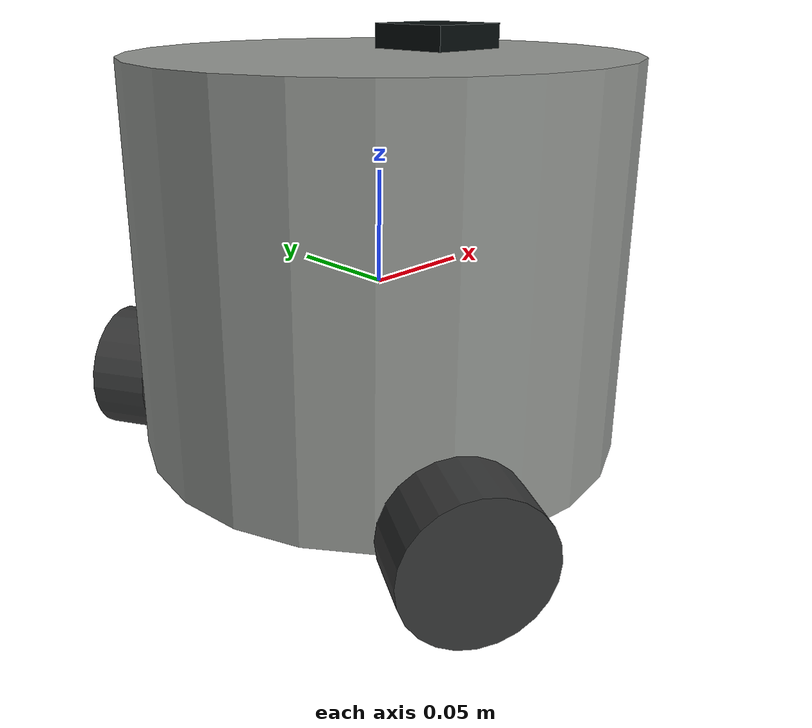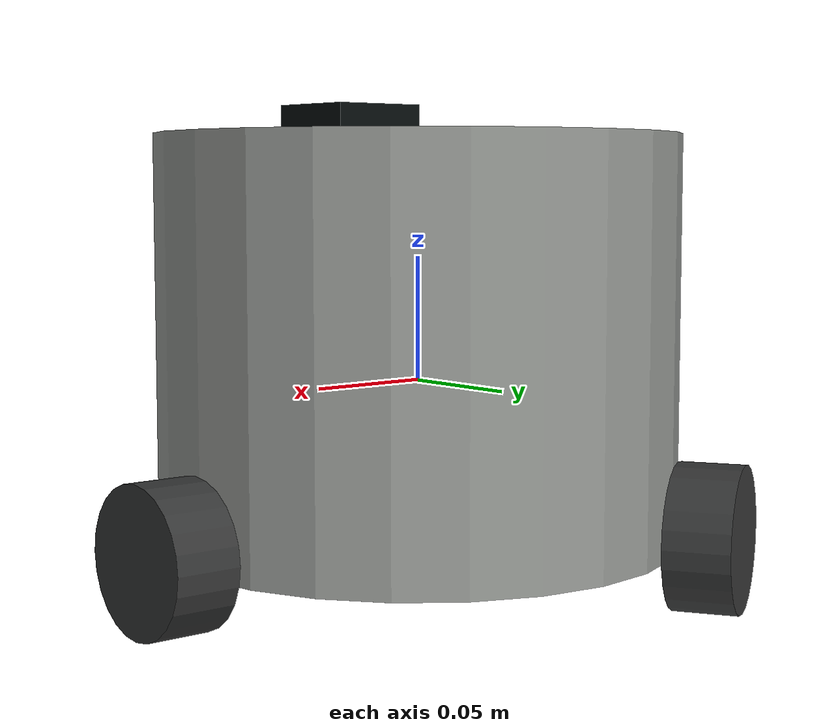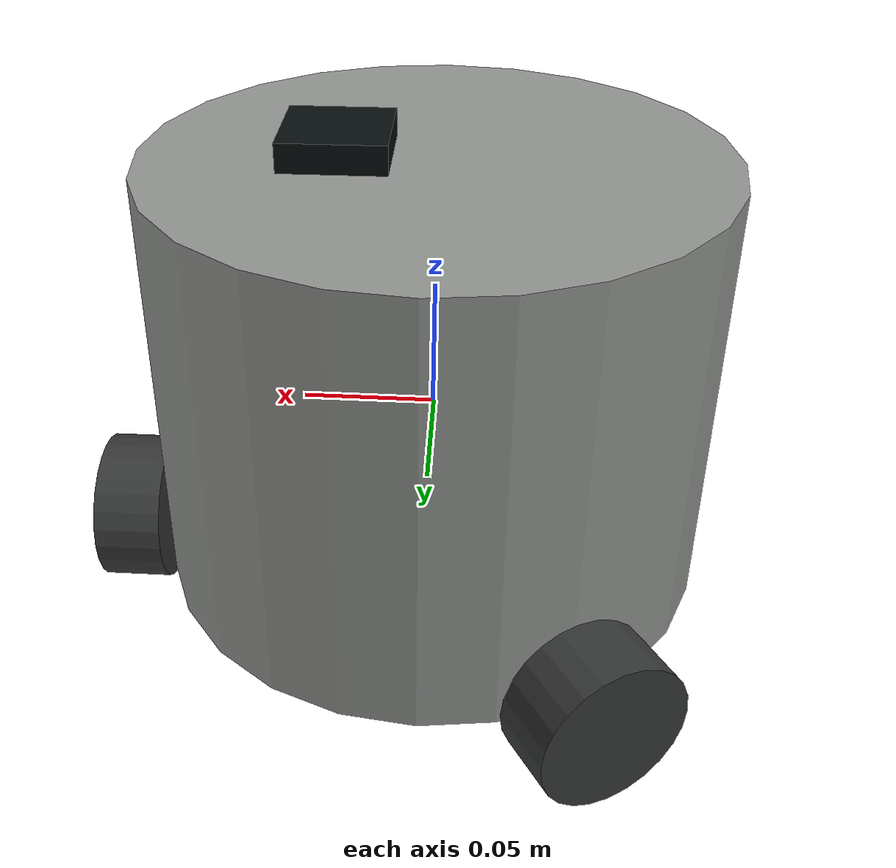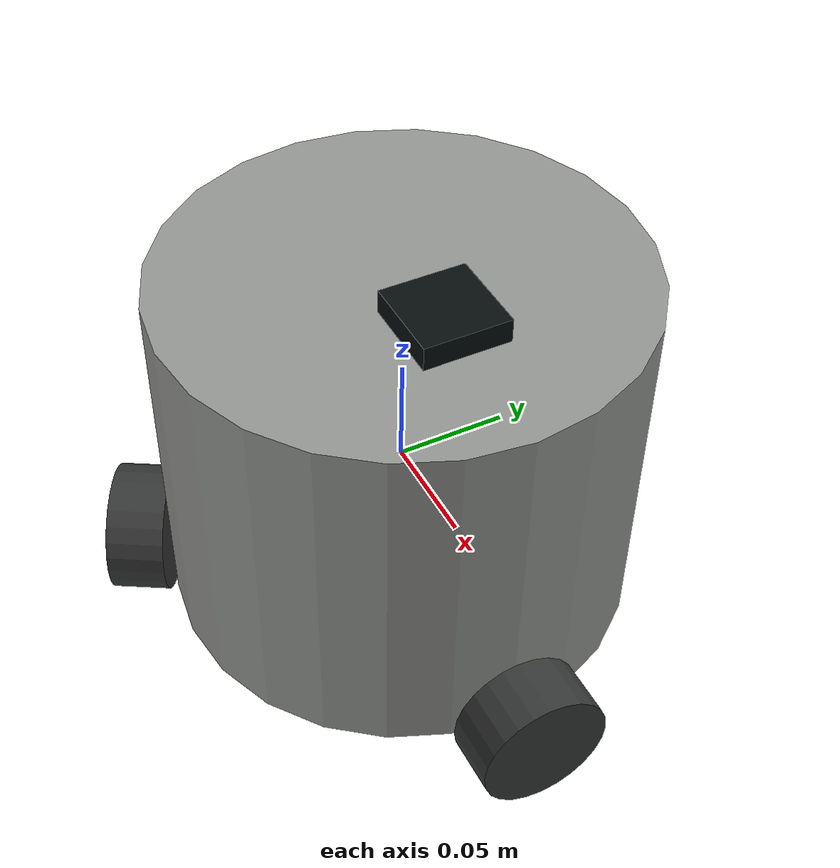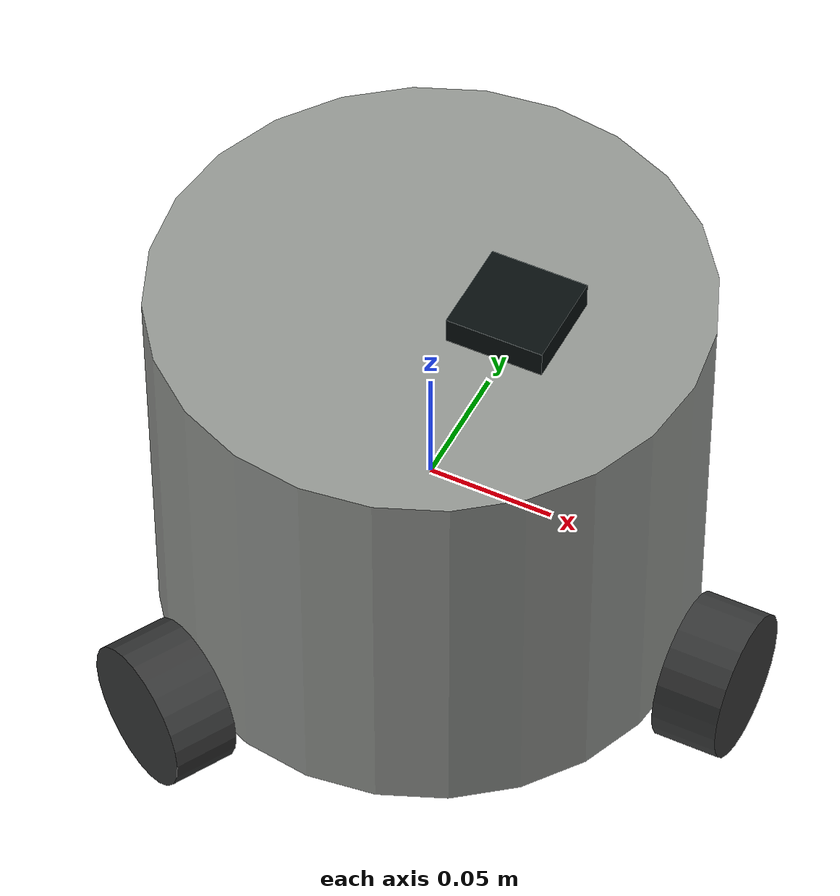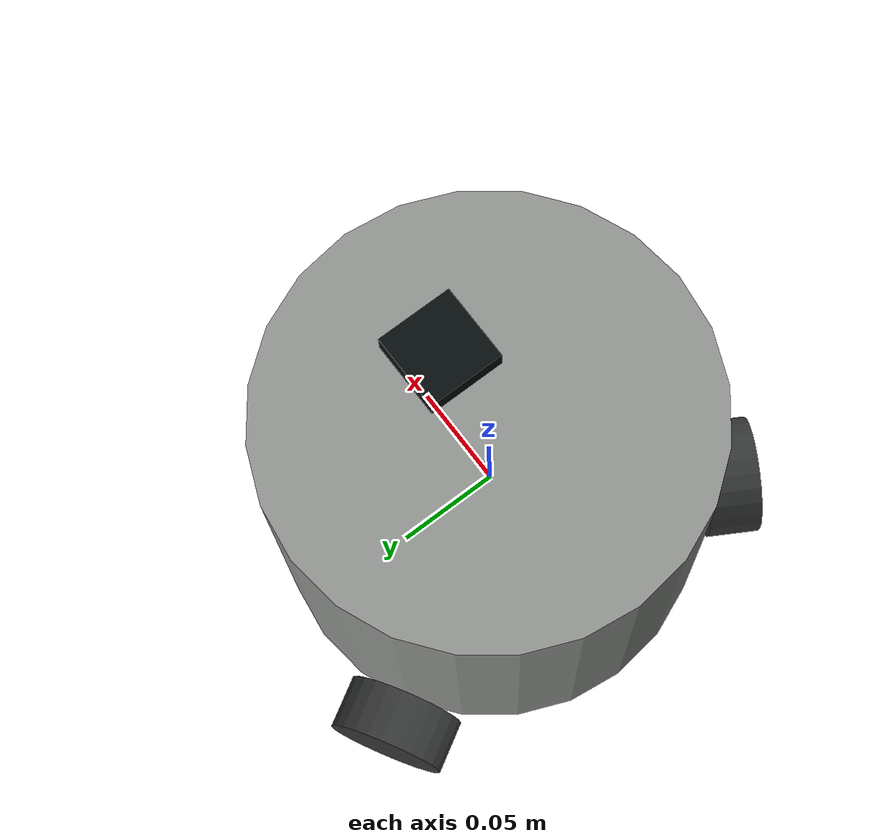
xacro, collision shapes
<?xml version="1.0" encoding="utf-8"?>
<robot name="akros2_omni" xmlns:xacro="http://ros.org/wiki/xacro">
<xacro:include filename="$(find akros2_description)/urdf/akros2_omni/robot.common.xacro"/>
<xacro:include filename="$(find akros2_description)/urdf/akros2_omni/robot.control.xacro"/>
<xacro:include filename="$(find akros2_description)/urdf/akros2_omni/robot.gazebo.xacro"/>

<xacro:arg name="mesh_path_omni" default="package://akros2_description/meshes/akros2_omni/" /> <!-- HTTPS URL also works here -->
<xacro:arg name="nopath" default="false" />
<xacro:property name="mesh_path" value="$(arg mesh_path_omni)" />

<xacro:if value="$(arg nopath)">
  <xacro:property name="mesh_path" value="" />
</xacro:if>

<!-- **** LINKS **** -->

<!-- BASE_LINK -->
<link name="base_link">
  <visual>
    <origin xyz="0 0 0" rpy="0 0 0" />
    <geometry>
      <mesh filename="${mesh_path}base_module.stl" />
    </geometry>
    <material name="BaseLinkColor"/>
  </visual>
  <collision>
    <origin xyz="0 0 ${base_center_offset_z}" rpy="0 0 0" />
    <geometry>
      <cylinder length="${base_height}" radius="${base_radius}"/>
    </geometry>
  </collision>
</link>

<!-- BASE_LINK_INERTIAL (WORKAROUND FOR KDL WHICH DOES NOT ACCEPT BASE_LINK WITH INERTIA) -->
<link name="base_link_inertial">
  <inertial>
    <origin xyz="0 0 0" rpy="0 0 0" />
    <mass value="${base_mass}"/>
    <xacro:cylinder_inertia m="${base_mass}" r="${base_radius}" h="${base_height}"/>
  </inertial>
</link>

<!-- BASE_FOOTPRINT -->
<link name="base_footprint"/>

<!-- LD06 LASER_LINK -->
<link name="laser_link">
  <inertial>
    <origin xyz="0 0 0" rpy="0 0 0" />
    <mass value="${laser_mass}" />
    <xacro:box_inertia m="${laser_mass}" x="${laser_length}" y="${laser_width}" z="${laser_height}"/>
  </inertial>
  <visual>
    <origin xyz="0 0 0" rpy="0 0 ${-1*pi_by_two}" />
    <geometry>
      <mesh filename="${mesh_path}ld06.stl" />
    </geometry>
    <material name="LaserColor"/>
  </visual>
  <collision>
    <origin xyz="0 0 ${laser_height/2}" rpy="0 0 ${-1*pi_by_two}" />
    <geometry>
      <box size="${laser_length} ${laser_width} ${laser_height}"/>
    </geometry>
  </collision>
</link>

<!-- LASER_FRAME -->
<link name="laser_frame"/>

<!-- BNO085 IMU_LINK -->
<link name="imu_link"/>

<!-- WHEEL FRONT -->
<link name="wheel_f">
  <inertial>
    <mass value="${wheel_mass}"/>
    <xacro:cylinder_inertia m="${wheel_mass}" r="${wheel_radius}" h="${wheel_thickness}"/>
  </inertial>
  <visual>
    <origin xyz="0 0 0" rpy="0 0 0" />
    <geometry>
      <mesh filename="${mesh_path}omniwheel.stl" />
    </geometry>
    <material name="WheelsNavColor"/>
  </visual>
  <collision>
    <origin xyz="${wheel_thickness/2} 0 0" rpy="0 ${pi_by_two} 0" />
    <geometry>
      <cylinder length="${wheel_thickness}" radius="${wheel_radius}"/>
    </geometry>
  </collision>
</link>

<!-- WHEEL LEFT -->
<link name="wheel_l">
  <inertial>
    <mass value="${wheel_mass}"/>
    <xacro:cylinder_inertia m="${wheel_mass}" r="${wheel_radius}" h="${wheel_thickness}"/>
  </inertial>
  <visual>
    <origin xyz="0 0 0" rpy="0 0 0" />
    <geometry>
      <mesh filename="${mesh_path}omniwheel.stl" />
    </geometry>
    <material name="WheelsNavColor"/>
  </visual>
  <collision>
    <origin xyz="${wheel_thickness/2} 0 0" rpy="0 ${pi_by_two} 0" />
    <geometry>
      <cylinder length="${wheel_thickness}" radius="${wheel_radius}"/>
    </geometry>
  </collision>
</link>

<!-- WHEEL RIGHT -->
<link name="wheel_r">
  <inertial>
    <mass value="${wheel_mass}"/>
    <xacro:cylinder_inertia m="${wheel_mass}" r="${wheel_radius}" h="${wheel_thickness}"/>
  </inertial>
  <visual>
    <origin xyz="0 0 0" rpy="0 0 0" />
    <geometry>
      <mesh filename="${mesh_path}omniwheel.stl" />
    </geometry>
    <material name="WheelsNavColor"/>
  </visual>
  <collision>
    <origin xyz="${wheel_thickness/2} 0 0" rpy="0 ${pi_by_two} 0" />
    <geometry>
      <cylinder length="${wheel_thickness}" radius="${wheel_radius}"/>
    </geometry>
  </collision>
</link>

<!-- **** JOINTS **** -->

<!-- BASE_LINK_INERTIAL TO BASE_LINK -->
<joint name="base_inertial_fixed" type="fixed">
  <parent link="base_link"/>
  <child link="base_link_inertial"/>
  <origin xyz="0 0 0"/>
</joint>

<!-- BASE_FOOTPRINT TO BASE_LINK -->
<joint name="base_footprint_fixed" type="fixed">
  <parent link="base_link"/>
  <child link="base_footprint"/>
  <origin xyz="0 0 ${footprint_base_offset_z}"/>
</joint>

<!-- LASER_LINK TO BASE_LINK -->
<joint name="base_laser_fixed" type="fixed">
  <parent link="base_link"/>
  <child link="laser_link"/>
  <origin xyz="${base_laser_offset_x} 0 ${base_laser_offset_z}"/>
</joint>

<!-- LASER_FRAME TO LASER_LINK -->
<joint name="laser_frame_fixed" type="fixed">
  <parent link="laser_link"/>
  <child link="laser_frame"/>
  <origin xyz="0 0 ${laser_frame_offset_z}"/>
</joint>

<!-- IMU_LINK TO BASE_LINK -->
<joint name="imu_base_fixed" type="fixed">
  <parent link="base_link"/>
  <child link="imu_link"/>
  <origin xyz="0 0 ${imu_offset_z}"/>
</joint>

<!-- WHEEL_F TO BASE_LINK -->
<joint name="joint_f" type="continuous">
  <parent link="base_link" />
  <child link="wheel_f" />
  <origin xyz="${joint_f_offset_x} 0 ${joint_offset_z}" rpy="0 0 0" />
  <axis xyz="1 0 0" />
</joint>

<!-- WHEEL_L TO BASE_LINK -->
<joint name="joint_l" type="continuous">
  <parent link="base_link" />
  <child link="wheel_l" />
  <origin xyz="${joint_lr_offset_x} ${joint_lr_offset_y} ${joint_offset_z}" rpy="0 0 ${2*pi_by_three}" />
  <axis xyz="1 0 0" />
</joint>

<!-- WHEEL_R TO BASE_LINK -->
<joint name="joint_r" type="continuous">
  <parent link="base_link" />
  <child link="wheel_r" />
  <origin xyz="${joint_lr_offset_x} ${-1*joint_lr_offset_y} ${joint_offset_z}" rpy="0 0 ${-2*pi_by_three}" />
  <axis xyz="1 0 0" />
</joint>

</robot>

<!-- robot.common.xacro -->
<robot name="omni_common" xmlns:xacro="http://ros.org/wiki/xacro">
<!-- All values below are based on the CAD model (Fusion 360) -->

<xacro:property name="pi_by_two" value="1.5707963" />
<xacro:property name="pi_by_three" value="1.0471975"/>

<xacro:property name="base_mass" value="2.0" /> <!-- Guesstimate, needs to be measured -->
<xacro:property name="base_height" value="0.1651" />
<xacro:property name="base_radius" value="0.105" /> <!-- Distance from the motor shaft to the vertical axis -->

<xacro:property name="imu_offset_z" value="0.063003" />

<xacro:property name="laser_mass" value="0.12" />
<xacro:property name="laser_length" value="0.038" />
<xacro:property name="laser_width" value="0.0381" />
<xacro:property name="laser_height" value="0.033" />

<xacro:property name="wheel_radius" value="0.029" />
<xacro:property name="wheel_mass" value="0.075" /> <!-- Guesstimate, needs to be measured -->
<xacro:property name="wheel_thickness" value="0.026" />

<xacro:property name="base_center_offset_z" value="0.0164" />
<xacro:property name="footprint_base_offset_z" value="-0.085597" /> <!-- CAD offset, Actual offset ~= -0.083597 -->
<xacro:property name="base_laser_offset_x" value="0.034435" />
<xacro:property name="base_laser_offset_z" value="0.076503" />
<xacro:property name="laser_frame_offset_z" value="0.0255" />

<xacro:property name="joint_f_offset_x" value="0.10683" />
<xacro:property name="joint_lr_offset_x" value="-0.053415" />
<xacro:property name="joint_lr_offset_y" value="0.092518" />
<xacro:property name="joint_offset_z" value="-0.056597" />

<xacro:macro name="cylinder_inertia" params="m r h">
  <inertia  ixx="${m*(3*r*r+h*h)/12}" ixy = "0" ixz = "0"
            iyy="${m*(3*r*r+h*h)/12}" iyz = "0"
            izz="${m*r*r/2}" />
</xacro:macro>

<xacro:macro name="box_inertia" params="m x y z">
  <inertia  ixx="${m*(y*y+z*z)/12}" ixy = "0" ixz = "0"
            iyy="${m*(x*x+z*z)/12}" iyz = "0"
            izz="${m*(x*x+z*z)/12}" />
</xacro:macro>

<xacro:macro name="sphere_inertia" params="m r">
  <inertia  ixx="${2*m*r*r/5}" ixy = "0" ixz = "0"
            iyy="${2*m*r*r/5}" iyz = "0"
            izz="${2*m*r*r/5}" />
</xacro:macro>

<!-- color codes from https://gist.github.com/naoki-mizuno/5e63a13597d5c5fe817c1600b829595e -->

<material name="LaserColor">
    <color rgba="0.027450980392156862 0.050980392156862744 0.050980392156862744 1.0" /> <!-- almost black -->
</material>

<material name="WheelsNavColor">
    <color rgba="0.21176470588235294 0.21568627450980393 0.21568627450980393 1.0" /> <!-- darkgrey -->
</material>

<material name="BaseLinkColor">
    <color rgba="0.5725490196078431 0.5843137254901961 0.5686274509803921 1.0" /> <!-- grey -->
</material>

</robot>
